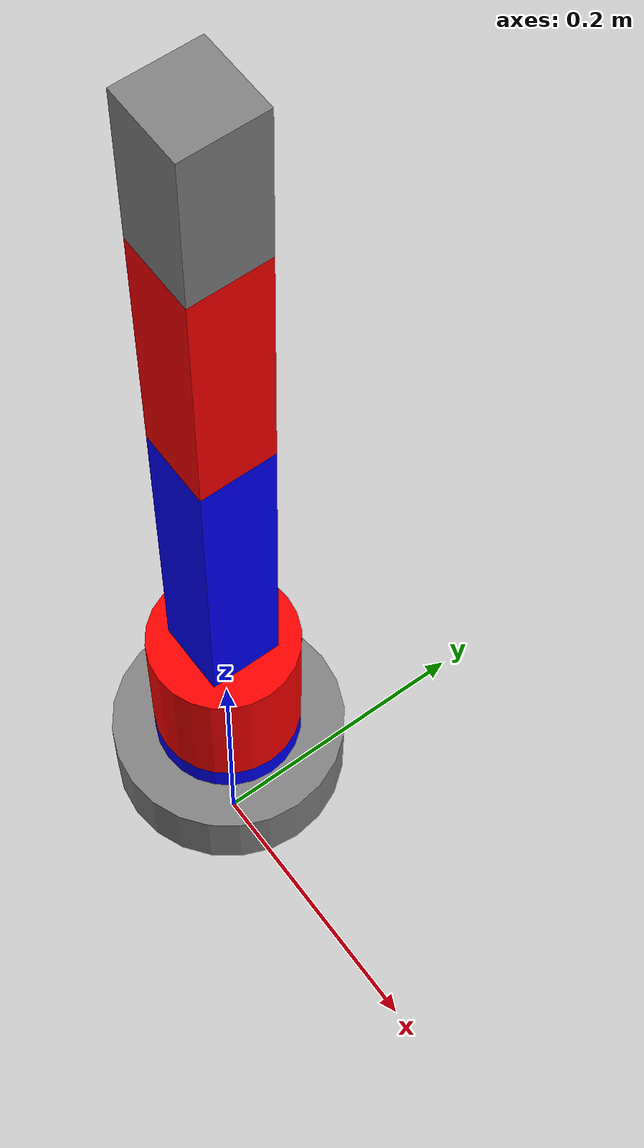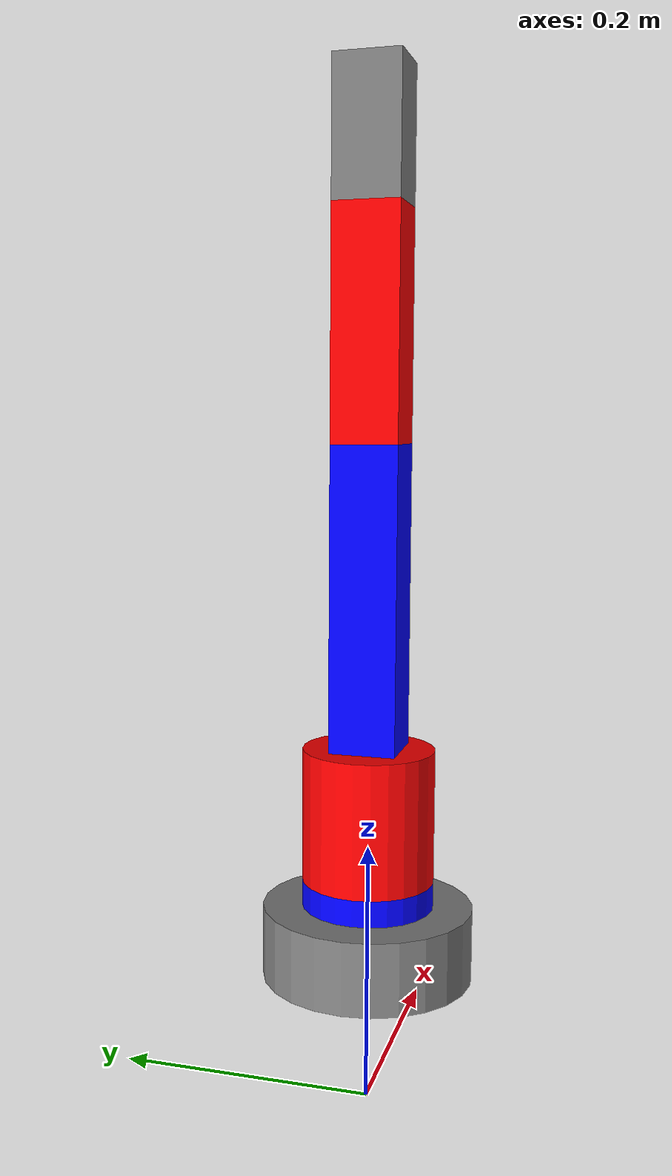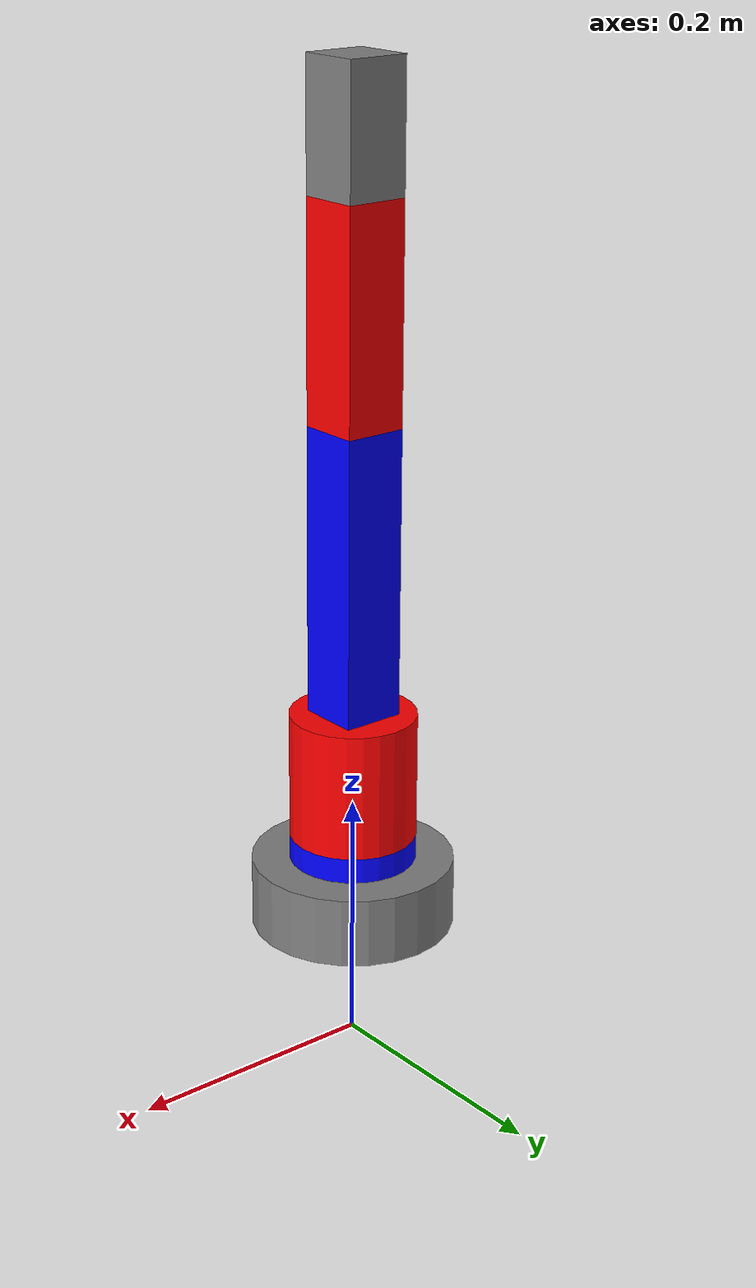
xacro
<?xml version="1.0"?>
<robot xmlns:xacro="http://www.ros.org/wiki/xacro" name="my_robot_arm">

  <!-- Properties -->
  <xacro:property name="base_height" value="0.0555"/>
  <xacro:property name="B1_height" value="0.02"/>
  <xacro:property name="B2_height" value="0.102"/>
  <xacro:property name="arm_inf_height" value="0.228"/>
  <xacro:property name="arm_sup_height" value="0.170"/>
  <xacro:property name="gripper_length" value="0.1"/>
  <xacro:property name="link_radius" value="0.05"/>

  <!-- Materials -->
  <material name="blue">
    <color rgba="0.0 0.0 1.0 1.0"/>
  </material>
  <material name="red">
    <color rgba="1.0 0.0 0.0 1.0"/>
  </material>
  <material name="gray">
    <color rgba="0.5 0.5 0.5 1.0"/>
  </material>

  <link name="world"/>

  <joint name="ground" type="fixed">
    <parent link="world"/>
    <child link="base_link"/>
    <origin xyz="0 0 0.1" rpy="0 0 0"/>
    <axis xyz="0 0 1"/>
  </joint>

  <!-- Base Link -->
  <link name="base_link">
    <visual>
      <geometry>
        <cylinder radius="0.08" length="${base_height}"/>
      </geometry>
      <material name="gray"/>
      <origin xyz="0 0 ${base_height/2}" rpy="0 0 0"/>
    </visual>
    <collision>
      <geometry>
        <cylinder radius="0.08" length="${base_height}"/>
      </geometry>
      <origin xyz="0 0 ${base_height/2}" rpy="0 0 0"/>
    </collision>
    <inertial>
      <mass value="1.0"/>
      <origin xyz="0 0 ${base_height/2}"/>
      <inertia ixx="0.01" ixy="0.0" ixz="0.0" iyy="0.01" iyz="0.0" izz="0.01"/>
    </inertial>
  </link>

  <joint name="joint1" type="fixed">
    <parent link="base_link"/>
    <child link="B1_fixe"/>
    <origin xyz="0 0 ${base_height}" rpy="0 0 0"/>
    <axis xyz="0 0 1"/>
  </joint>

  <!-- First Link -->
  <link name="B1_fixe">
    <visual>
      <geometry>
        <cylinder radius="${link_radius}" length="${B1_height}"/>
      </geometry>
      <material name="blue"/>
      <origin xyz="0 0 ${B1_height/2}" rpy="0 0 0"/>
    </visual>
    <collision>
      <geometry>
        <cylinder radius="${link_radius}" length="${B1_height}"/>
      </geometry>
      <origin xyz="0 0 ${B1_height/2}" rpy="0 0 0"/>
    </collision>
    <inertial>
      <mass value="0.01"/>
      <origin xyz="0 0 ${B1_height/2}"/>
      <inertia ixx="0.0001" ixy="0.0" ixz="0.0" iyy="0.0001" iyz="0.0" izz="0.0001"/>
    </inertial>
  </link>

  <joint name="joint2" type="revolute">
    <parent link="B1_fixe"/>
    <child link="B2"/>
    <origin xyz="0 0 ${B1_height}" rpy="0 0 0"/>
    <axis xyz="0 0 1"/>
    <limit lower="-1.57" upper="1.57" effort="10" velocity="1"/>
  </joint>

  <link name="B2">
    <visual>
      <geometry>
        <cylinder radius="${link_radius}" length="${B2_height}"/>
      </geometry>
      <material name="red"/>
      <origin xyz="0 0 ${B2_height/2}" rpy="0 0 0"/>
    </visual>
    <collision>
      <geometry>
        <cylinder radius="${link_radius}" length="${B2_height}"/>
      </geometry>
      <origin xyz="0 0 ${B2_height/2}" rpy="0 0 0"/>
    </collision>
    <inertial>
      <mass value="0.1"/>
      <origin xyz="0 0 ${B2_height/2}"/>
      <inertia ixx="0.0001" ixy="0.0" ixz="0.0" iyy="0.0001" iyz="0.0" izz="0.000001"/>
    </inertial>
  </link>

  <joint name="joint3" type="revolute">
    <parent link="B2"/>
    <child link="arm_inf"/>
    <origin xyz="0 0 ${B2_height}" rpy="0 0 0"/>
    <axis xyz="1 0 0"/>
    <limit lower="-1.57" upper="1.57" effort="10" velocity="1"/>
  </joint>

  <link name="arm_inf">
    <visual>
      <geometry>
        <box size="0.05 0.05 ${arm_inf_height}"/>
      </geometry>
      <material name="blue"/>
      <origin xyz="0 0 ${arm_inf_height/2}" rpy="0 0 0"/>
    </visual>
    <collision>
      <geometry>
        <box size="0.05 0.05 ${arm_inf_height}"/>
      </geometry>
      <origin xyz="0 0 ${arm_inf_height/2}" rpy="0 0 0"/>
    </collision>
    <inertial>
      <mass value="0.1"/>
      <origin xyz="0 0 ${arm_inf_height/2}"/>
      <inertia ixx="0.0001" ixy="0.0" ixz="0.0" iyy="0.0001" iyz="0.0" izz="0.0001"/>
    </inertial>
  </link>

  <joint name="joint4" type="revolute">
    <parent link="arm_inf"/>
    <child link="arm_sup"/>
    <origin xyz="0 0 ${arm_inf_height}" rpy="0 0 0"/>
    <axis xyz="1 0 0"/>
    <limit lower="-1.57" upper="1.57" effort="10" velocity="1"/>
  </joint>

  <link name="arm_sup">
    <visual>
      <geometry>
        <box size="0.05 0.05 ${arm_sup_height}"/>
      </geometry>
      <material name="red"/>
      <origin xyz="0 0 ${arm_sup_height/2}" rpy="0 0 0"/>
    </visual>
    <collision>
      <geometry>
        <box size="0.05 0.05 ${arm_sup_height}"/>
      </geometry>
      <origin xyz="0 0 ${arm_sup_height/2}" rpy="0 0 0"/>
    </collision>
    <inertial>
      <mass value="0.2"/>
      <origin xyz="0 0 ${arm_sup_height/2}"/>
      <inertia ixx="0.0001" ixy="0.0" ixz="0.0" iyy="0.0001" iyz="0.0" izz="0.0001"/>
    </inertial>
  </link>

  <joint name="joint5" type="revolute">
    <parent link="arm_sup"/>
    <child link="gripper"/>
    <origin xyz="0 0 ${arm_sup_height}" rpy="0 0 0"/>
    <axis xyz="1 0 0"/>
    <limit effort="10.0" velocity="1.0" lower="-1.57" upper="1.57"/>
  </joint>

  <link name="gripper">
    <visual>
      <geometry>
        <box size="0.05 0.05 ${gripper_length}"/>
      </geometry>
      <material name="gray"/>
      <origin xyz="0 0 ${gripper_length/2}" rpy="0 0 0"/>
    </visual>
    <collision>
      <geometry>
        <box size="0.05 0.05 ${gripper_length}"/>
      </geometry>
      <origin xyz="0 0 ${gripper_length/2}" rpy="0 0 0"/>
    </collision>
    <inertial>
      <mass value="0.1"/>
      <origin xyz="0 0 ${gripper_length/2}"/>
      <inertia ixx="0.0001" ixy="0.0" ixz="0.0" iyy="0.0001" iyz="0.0" izz="0.0001"/>
    </inertial>
  </link>

</robot>
